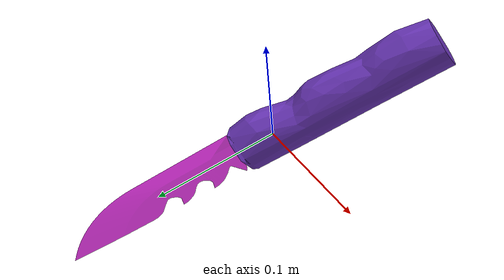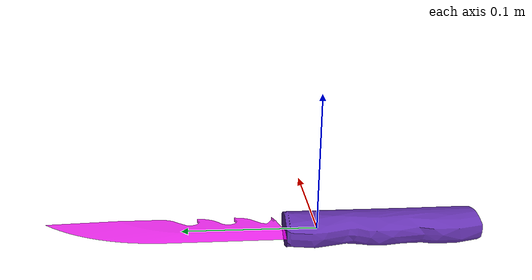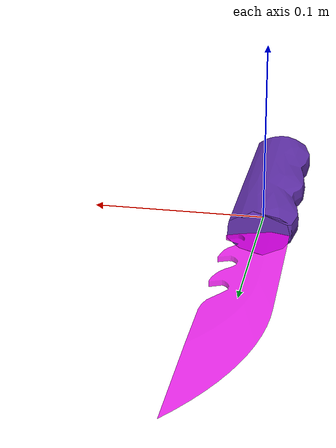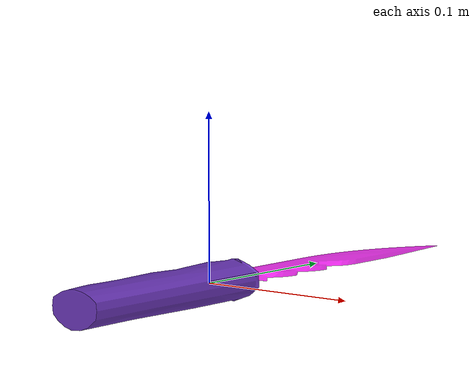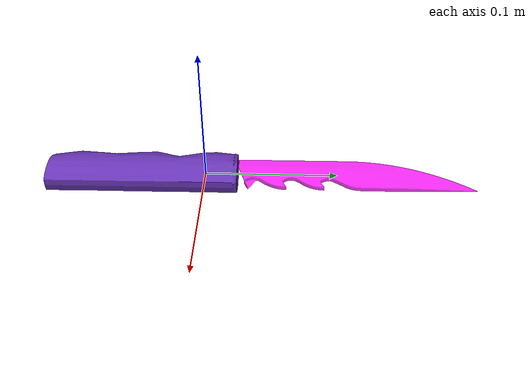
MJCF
<?xml version="1.0" encoding="utf-8"?>
<mujoco model="top_watertight_tiny">

  <asset>

    <mesh file="top_watertight_tiny.obj"/>

    <mesh file="top_watertight_tiny_collision_0.obj"/>

    <mesh file="top_watertight_tiny_collision_1.obj"/>

    <mesh file="bottom_watertight_tiny.obj"/>

    <mesh file="bottom_watertight_tiny_collision_0.obj"/>

    <mesh file="bottom_watertight_tiny_collision_1.obj"/>

    <mesh file="bottom_watertight_tiny_collision_2.obj"/>

    <mesh file="bottom_watertight_tiny_collision_3.obj"/>

  </asset>

  <worldbody>

    <body name="top_watertight_tiny">

      <freejoint/>

      <geom mesh="top_watertight_tiny" group="2" type="mesh" rgba="0.4 0.2 0.7 1" contype="0" conaffinity="0" solimp="0.90 0.95 0.001" solref="0.02 1.0" density="100" friction="0.95 0.4 0.3"/>

      <geom mesh="top_watertight_tiny_collision_0" rgba="0.21369201087381917 0.740563801173343 0.9891043515283297 1" group="3" type="mesh" solimp="0.90 0.95 0.001" solref="0.02 1.0" density="100" friction="0.95 0.4 0.3"/>

      <geom mesh="top_watertight_tiny_collision_1" rgba="0.7351590559158792 0.725224313089607 0.14694919974708975 1" group="3" type="mesh" solimp="0.90 0.95 0.001" solref="0.02 1.0" density="100" friction="0.95 0.4 0.3"/>

      <body name="bottom_watertight_tiny">

        <geom mesh="bottom_watertight_tiny" group="2" type="mesh" rgba="1 0 1 0.8" contype="0" conaffinity="0" solimp="0.90 0.95 0.001" solref="0.02 1.0" density="100" friction="0.95 0.4 0.3"/>

        <geom mesh="bottom_watertight_tiny_collision_0" rgba="0.9260972098097174 0.18916342854542323 0.022360709495351738 1" group="3" type="mesh" solimp="0.90 0.95 0.001" solref="0.02 1.0" density="100" friction="0.95 0.4 0.3"/>

        <geom mesh="bottom_watertight_tiny_collision_1" rgba="0.5759336862588406 0.7555342468362388 0.09467687241666978 1" group="3" type="mesh" solimp="0.90 0.95 0.001" solref="0.02 1.0" density="100" friction="0.95 0.4 0.3"/>

        <geom mesh="bottom_watertight_tiny_collision_2" rgba="0.4910434208436002 0.1971546842838794 0.3004253026173117 1" group="3" type="mesh" solimp="0.90 0.95 0.001" solref="0.02 1.0" density="100" friction="0.95 0.4 0.3"/>

        <geom mesh="bottom_watertight_tiny_collision_3" rgba="0.003869515490081521 0.05882521931567519 0.10508533763175776 1" group="3" type="mesh" solimp="0.90 0.95 0.001" solref="0.02 1.0" density="100" friction="0.95 0.4 0.3"/>

        <site name="bottom_watertight_tiny_touch_site" pos="0 0 0" size="0.2" rgba="1 0 0 0." type="sphere"/>
      </body>

      <site name="top_watertight_tiny_touch_site" pos="0 0 0" size="0.2" rgba="1 0 0 0." type="sphere"/>
    </body>

  </worldbody>

  <sensor>
    <touch name="top_watertight_tiny_touch" site="top_watertight_tiny_touch_site"/>
    <touch name="bottom_watertight_tiny_touch" site="bottom_watertight_tiny_touch_site"/>
  </sensor>
</mujoco>
